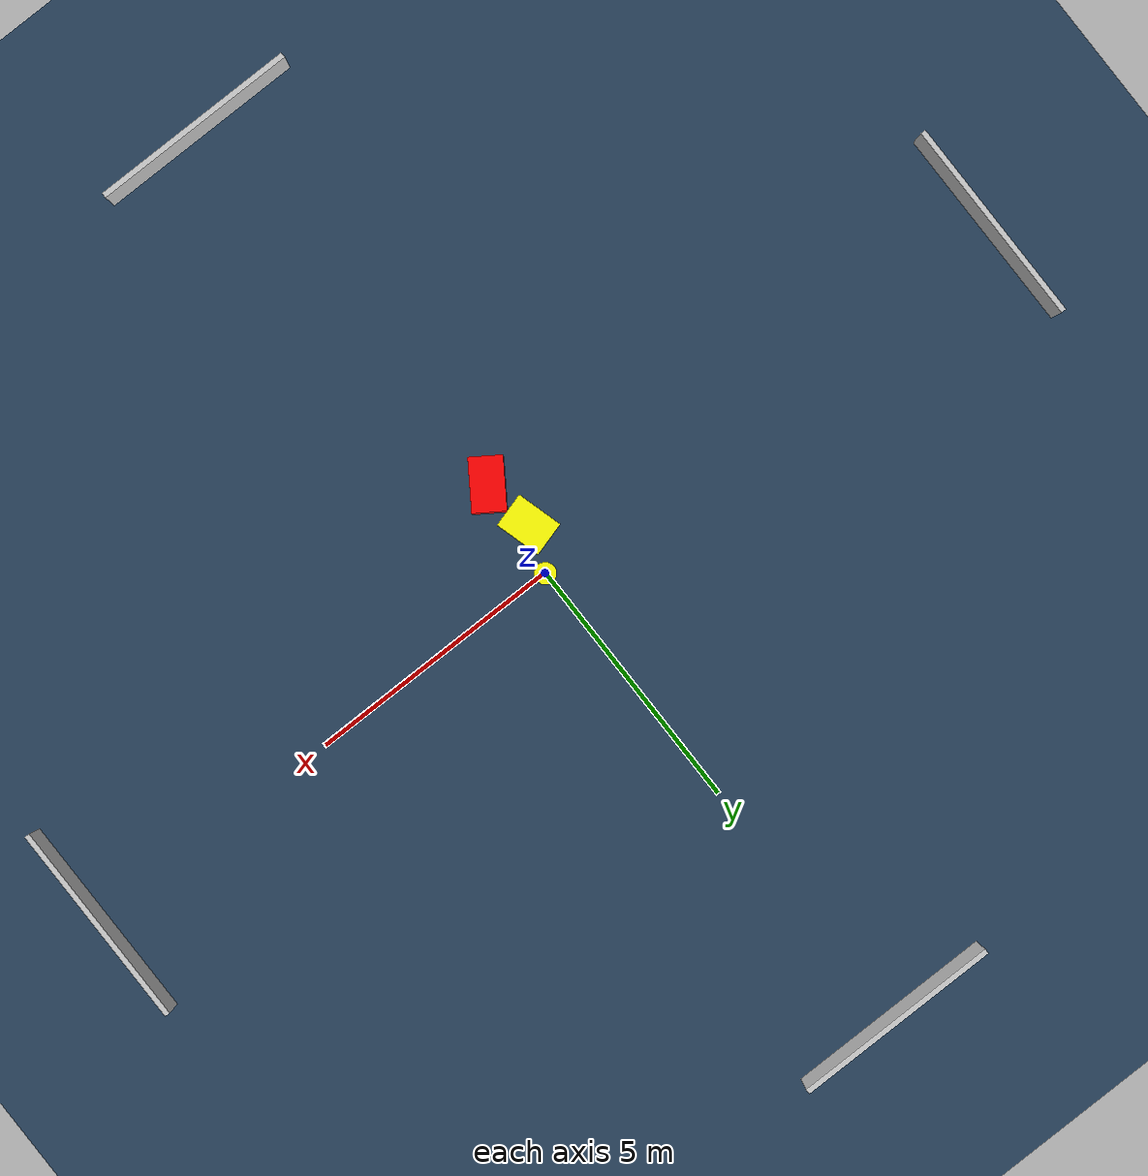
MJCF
<?xml version="1.0" ?>
<mujoco model="generated_environment">
  <option timestep="0.01" integrator="RK4" cone="elliptic"/>
  <default>
    <geom density="1"/>
  </default>
  <asset>
    <texture builtin="gradient" height="3072" name="skybox" rgb1="0.3 0.5 0.7" rgb2="0 0 0" type="skybox" width="512"/>
    <texture builtin="checker" height="300" name="groundplane" rgb1="0.2 0.3 0.4" rgb2="0.1 0.2 0.3" type="2d" width="300"/>
    <material name="groundplane" reflectance="0.2" texrepeat="5 5" texture="groundplane"/>
  </asset>
  <worldbody>
    <light dir="0 0 -1" directional="true" pos="0 0 1.5"/>
    <geom condim="3" friction="0.5 0.005 0.001" material="groundplane" name="floor" pos="0 0 0" size="0 0 0.05" type="plane"/>
    <body name="walls">
      <geom name="wall_1" condim="4" pos="-10.0 0.0 0.3" rgba="0.800000011920929 0.800000011920929 0.800000011920929 1.0" size="0.05 2.0 0.3" type="box"/>
      <geom name="wall_2" condim="4" pos="10.0 0.0 0.3" rgba="0.800000011920929 0.800000011920929 0.800000011920929 1.0" size="0.05 2.0 0.3" type="box"/>
      <geom name="wall_3" condim="4" pos="0.0 -10.0 0.3" rgba="0.800000011920929 0.800000011920929 0.800000011920929 1.0" size="2.0 0.05 0.3" type="box"/>
      <geom name="wall_4" condim="4" pos="0.0 10.0 0.3" rgba="0.800000011920929 0.800000011920929 0.800000011920929 1.0" size="2.0 0.05 0.3" type="box"/>
    </body>
    <body name="robot">
      <joint name="joint_x" type="slide" pos="0 0 0" axis="1 0 0"/>
      <joint name="joint_y" type="slide" pos="0 0 0" axis="0 1 0"/>
      <geom name="robot" type="cylinder" pos="0.0 0.0 0.2" size="0.2 0.2 0.0" mass="5.0" friction="1.0 0.005 0.0001" condim="4" rgba="1.0 1.0 0.0 1.0"/>
    </body>
    <body name="obstacle_1_movable">
      <geom name="obstacle_1_movable" condim="4" pos="-0.2976243332467229 -0.8534281876311699 0.3" euler="0 0 285.91243682491097" friction="0.0 0.005 0.001" rgba="1.0 1.0 0.0 1.0" size="0.4428613996305926 0.33228307947669267 0.3" type="box" mass="0.1"/>
      <joint type="free"/>
    </body>
    <body name="obstacle_2_static">
      <geom name="obstacle_2_static" condim="4" pos="-0.16643179602065133 -1.8634182402110007 0.3" euler="0 0 236.00525534017564" friction="0.0 0.005 0.001" rgba="1.0 0.0 0.0 1.0" size="0.49609392955135173 0.3130434055486158 0.3" type="box"/>
    </body>
  </worldbody>
  <actuator>
    <motor name="actuator_x" joint="joint_x" gear="1" ctrlrange="-1 1"/>
    <motor name="actuator_y" joint="joint_y" gear="1" ctrlrange="-1 1"/>
  </actuator>
</mujoco>
